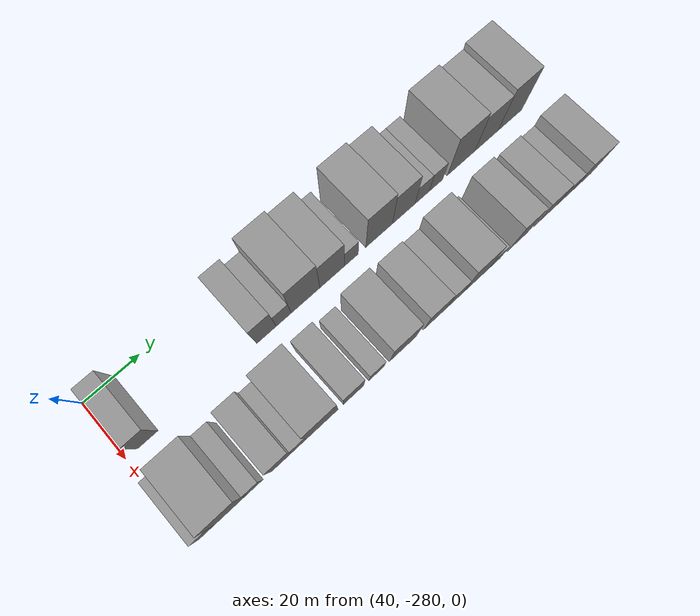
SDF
<sdf version="1.6">
 <world name="default">
  <model name="building_1">
   <static>1</static>
   <pose>50.0000 -272.4769 0 0.000000 0.000000 0.000000</pose>
   <link name="link">
    <pose>0 0 7.50 0 0 0</pose>
    <collision name="collision"><geometry><box><size>20.0000 7.0463 15.0000</size></box></geometry></collision>
    <visual name="visual">
     <cast_shadows>0</cast_shadows>
     <geometry><box><size>20.0000 7.0463 15.0000</size></box></geometry>
     <material>
      <script>
       <uri>model://grey_wall/materials/scripts</uri>
       <uri>model://grey_wall/materials/textures</uri>
       <name>vrc/grey_wall</name>
      </script>
     </material>
    </visual>
   </link>
  </model>
  <model name="building_2">
   <static>1</static>
   <pose>50.0000 -230.0296 0 0.000000 0.000000 0.000000</pose>
   <link name="link">
    <pose>0 0 9.00 0 0 0</pose>
    <collision name="collision"><geometry><box><size>20.0000 7.2828 18.0000</size></box></geometry></collision>
    <visual name="visual">
     <cast_shadows>0</cast_shadows>
     <geometry><box><size>20.0000 7.2828 18.0000</size></box></geometry>
     <material>
      <script>
       <uri>model://grey_wall/materials/scripts</uri>
       <uri>model://grey_wall/materials/textures</uri>
       <name>vrc/grey_wall</name>
      </script>
     </material>
    </visual>
   </link>
  </model>
  <model name="building_3">
   <static>1</static>
   <pose>50.0000 -223.5794 0 0.000000 0.000000 0.000000</pose>
   <link name="link">
    <pose>0 0 6.00 0 0 0</pose>
    <collision name="collision"><geometry><box><size>20.0000 5.6176 12.0000</size></box></geometry></collision>
    <visual name="visual">
     <cast_shadows>0</cast_shadows>
     <geometry><box><size>20.0000 5.6176 12.0000</size></box></geometry>
     <material>
      <script>
       <uri>model://grey_wall/materials/scripts</uri>
       <uri>model://grey_wall/materials/textures</uri>
       <name>vrc/grey_wall</name>
      </script>
     </material>
    </visual>
   </link>
  </model>
  <model name="building_4">
   <static>1</static>
   <pose>50.0000 -215.2634 0 0.000000 0.000000 0.000000</pose>
   <link name="link">
    <pose>0 0 12.00 0 0 0</pose>
    <collision name="collision"><geometry><box><size>20.0000 11.0144 24.0000</size></box></geometry></collision>
    <visual name="visual">
     <cast_shadows>0</cast_shadows>
     <geometry><box><size>20.0000 11.0144 24.0000</size></box></geometry>
     <material>
      <script>
       <uri>model://grey_wall/materials/scripts</uri>
       <uri>model://grey_wall/materials/textures</uri>
       <name>vrc/grey_wall</name>
      </script>
     </material>
    </visual>
   </link>
  </model>
  <model name="building_5">
   <static>1</static>
   <pose>50.0000 -204.9244 0 0.000000 0.000000 0.000000</pose>
   <link name="link">
    <pose>0 0 10.50 0 0 0</pose>
    <collision name="collision"><geometry><box><size>20.0000 9.6638 21.0000</size></box></geometry></collision>
    <visual name="visual">
     <cast_shadows>0</cast_shadows>
     <geometry><box><size>20.0000 9.6638 21.0000</size></box></geometry>
     <material>
      <script>
       <uri>model://grey_wall/materials/scripts</uri>
       <uri>model://grey_wall/materials/textures</uri>
       <name>vrc/grey_wall</name>
      </script>
     </material>
    </visual>
   </link>
  </model>
  <model name="building_6">
   <static>1</static>
   <pose>50.0000 -197.4030 0 0.000000 0.000000 0.000000</pose>
   <link name="link">
    <pose>0 0 6.00 0 0 0</pose>
    <collision name="collision"><geometry><box><size>20.0000 5.3790 12.0000</size></box></geometry></collision>
    <visual name="visual">
     <cast_shadows>0</cast_shadows>
     <geometry><box><size>20.0000 5.3790 12.0000</size></box></geometry>
     <material>
      <script>
       <uri>model://grey_wall/materials/scripts</uri>
       <uri>model://grey_wall/materials/textures</uri>
       <name>vrc/grey_wall</name>
      </script>
     </material>
    </visual>
   </link>
  </model>
  <model name="building_7">
   <static>1</static>
   <pose>50.0000 -186.3632 0 0.000000 0.000000 0.000000</pose>
   <link name="link">
    <pose>0 0 12.00 0 0 0</pose>
    <collision name="collision"><geometry><box><size>20.0000 10.7004 24.0000</size></box></geometry></collision>
    <visual name="visual">
     <cast_shadows>0</cast_shadows>
     <geometry><box><size>20.0000 10.7004 24.0000</size></box></geometry>
     <material>
      <script>
       <uri>model://grey_wall/materials/scripts</uri>
       <uri>model://grey_wall/materials/textures</uri>
       <name>vrc/grey_wall</name>
      </script>
     </material>
    </visual>
   </link>
  </model>
  <model name="building_8">
   <static>1</static>
   <pose>50.0000 -176.3072 0 0.000000 0.000000 0.000000</pose>
   <link name="link">
    <pose>0 0 10.50 0 0 0</pose>
    <collision name="collision"><geometry><box><size>20.0000 9.4116 21.0000</size></box></geometry></collision>
    <visual name="visual">
     <cast_shadows>0</cast_shadows>
     <geometry><box><size>20.0000 9.4116 21.0000</size></box></geometry>
     <material>
      <script>
       <uri>model://grey_wall/materials/scripts</uri>
       <uri>model://grey_wall/materials/textures</uri>
       <name>vrc/grey_wall</name>
      </script>
     </material>
    </visual>
   </link>
  </model>
  <model name="building_9">
   <static>1</static>
   <pose>50.0000 -168.6208 0 0.000000 0.000000 0.000000</pose>
   <link name="link">
    <pose>0 0 6.00 0 0 0</pose>
    <collision name="collision"><geometry><box><size>20.0000 5.9611 12.0000</size></box></geometry></collision>
    <visual name="visual">
     <cast_shadows>0</cast_shadows>
     <geometry><box><size>20.0000 5.9611 12.0000</size></box></geometry>
     <material>
      <script>
       <uri>model://grey_wall/materials/scripts</uri>
       <uri>model://grey_wall/materials/textures</uri>
       <name>vrc/grey_wall</name>
      </script>
     </material>
    </visual>
   </link>
  </model>
  <model name="building_10">
   <static>1</static>
   <pose>50.0000 -162.8003 0 0.000000 0.000000 0.000000</pose>
   <link name="link">
    <pose>0 0 6.00 0 0 0</pose>
    <collision name="collision"><geometry><box><size>20.0000 5.6799 12.0000</size></box></geometry></collision>
    <visual name="visual">
     <cast_shadows>0</cast_shadows>
     <geometry><box><size>20.0000 5.6799 12.0000</size></box></geometry>
     <material>
      <script>
       <uri>model://grey_wall/materials/scripts</uri>
       <uri>model://grey_wall/materials/textures</uri>
       <name>vrc/grey_wall</name>
      </script>
     </material>
    </visual>
   </link>
  </model>
  <model name="building_11">
   <static>1</static>
   <pose>50.0000 -152.1003 0 0.000000 0.000000 0.000000</pose>
   <link name="link">
    <pose>0 0 12.00 0 0 0</pose>
    <collision name="collision"><geometry><box><size>20.0000 11.7200 24.0000</size></box></geometry></collision>
    <visual name="visual">
     <cast_shadows>0</cast_shadows>
     <geometry><box><size>20.0000 11.7200 24.0000</size></box></geometry>
     <material>
      <script>
       <uri>model://grey_wall/materials/scripts</uri>
       <uri>model://grey_wall/materials/textures</uri>
       <name>vrc/grey_wall</name>
      </script>
     </material>
    </visual>
   </link>
  </model>
  <model name="building_12">
   <static>1</static>
   <pose>50.0000 -141.1149 0 0.000000 0.000000 0.000000</pose>
   <link name="link">
    <pose>0 0 10.50 0 0 0</pose>
    <collision name="collision"><geometry><box><size>20.0000 10.2509 21.0000</size></box></geometry></collision>
    <visual name="visual">
     <cast_shadows>0</cast_shadows>
     <geometry><box><size>20.0000 10.2509 21.0000</size></box></geometry>
     <material>
      <script>
       <uri>model://grey_wall/materials/scripts</uri>
       <uri>model://grey_wall/materials/textures</uri>
       <name>vrc/grey_wall</name>
      </script>
     </material>
    </visual>
   </link>
  </model>
  <model name="building_13">
   <static>1</static>
   <pose>50.0000 -130.6137 0 0.000000 0.000000 0.000000</pose>
   <link name="link">
    <pose>0 0 12.00 0 0 0</pose>
    <collision name="collision"><geometry><box><size>20.0000 10.7514 24.0000</size></box></geometry></collision>
    <visual name="visual">
     <cast_shadows>0</cast_shadows>
     <geometry><box><size>20.0000 10.7514 24.0000</size></box></geometry>
     <material>
      <script>
       <uri>model://grey_wall/materials/scripts</uri>
       <uri>model://grey_wall/materials/textures</uri>
       <name>vrc/grey_wall</name>
      </script>
     </material>
    </visual>
   </link>
  </model>
  <model name="building_63">
   <static>1</static>
   <pose>79.0000 -275.2815 0 0.000000 0.000000 0.000000</pose>
   <link name="link">
    <pose>0 0 6.00 0 0 0</pose>
    <collision name="collision"><geometry><box><size>20.0000 5.4369 12.0000</size></box></geometry></collision>
    <visual name="visual">
     <cast_shadows>0</cast_shadows>
     <geometry><box><size>20.0000 5.4369 12.0000</size></box></geometry>
     <material>
      <script>
       <uri>model://grey_wall/materials/scripts</uri>
       <uri>model://grey_wall/materials/textures</uri>
       <name>vrc/grey_wall</name>
      </script>
     </material>
    </visual>
   </link>
  </model>
  <model name="building_64">
   <static>1</static>
   <pose>79.0000 -266.9365 0 0.000000 0.000000 0.000000</pose>
   <link name="link">
    <pose>0 0 12.00 0 0 0</pose>
    <collision name="collision"><geometry><box><size>20.0000 11.2532 24.0000</size></box></geometry></collision>
    <visual name="visual">
     <cast_shadows>0</cast_shadows>
     <geometry><box><size>20.0000 11.2532 24.0000</size></box></geometry>
     <material>
      <script>
       <uri>model://grey_wall/materials/scripts</uri>
       <uri>model://grey_wall/materials/textures</uri>
       <name>vrc/grey_wall</name>
      </script>
     </material>
    </visual>
   </link>
  </model>
  <model name="building_65">
   <static>1</static>
   <pose>79.0000 -258.6698 0 0.000000 0.000000 0.000000</pose>
   <link name="link">
    <pose>0 0 6.00 0 0 0</pose>
    <collision name="collision"><geometry><box><size>20.0000 5.2800 12.0000</size></box></geometry></collision>
    <visual name="visual">
     <cast_shadows>0</cast_shadows>
     <geometry><box><size>20.0000 5.2800 12.0000</size></box></geometry>
     <material>
      <script>
       <uri>model://grey_wall/materials/scripts</uri>
       <uri>model://grey_wall/materials/textures</uri>
       <name>vrc/grey_wall</name>
      </script>
     </material>
    </visual>
   </link>
  </model>
  <model name="building_66">
   <static>1</static>
   <pose>79.0000 -249.2585 0 0.000000 0.000000 0.000000</pose>
   <link name="link">
    <pose>0 0 9.00 0 0 0</pose>
    <collision name="collision"><geometry><box><size>20.0000 7.5426 18.0000</size></box></geometry></collision>
    <visual name="visual">
     <cast_shadows>0</cast_shadows>
     <geometry><box><size>20.0000 7.5426 18.0000</size></box></geometry>
     <material>
      <script>
       <uri>model://grey_wall/materials/scripts</uri>
       <uri>model://grey_wall/materials/textures</uri>
       <name>vrc/grey_wall</name>
      </script>
     </material>
    </visual>
   </link>
  </model>
  <model name="building_67">
   <static>1</static>
   <pose>79.0000 -242.9611 0 0.000000 0.000000 0.000000</pose>
   <link name="link">
    <pose>0 0 6.00 0 0 0</pose>
    <collision name="collision"><geometry><box><size>20.0000 5.0523 12.0000</size></box></geometry></collision>
    <visual name="visual">
     <cast_shadows>0</cast_shadows>
     <geometry><box><size>20.0000 5.0523 12.0000</size></box></geometry>
     <material>
      <script>
       <uri>model://grey_wall/materials/scripts</uri>
       <uri>model://grey_wall/materials/textures</uri>
       <name>vrc/grey_wall</name>
      </script>
     </material>
    </visual>
   </link>
  </model>
  <model name="building_68">
   <static>1</static>
   <pose>79.0000 -234.7143 0 0.000000 0.000000 0.000000</pose>
   <link name="link">
    <pose>0 0 12.00 0 0 0</pose>
    <collision name="collision"><geometry><box><size>20.0000 11.4412 24.0000</size></box></geometry></collision>
    <visual name="visual">
     <cast_shadows>0</cast_shadows>
     <geometry><box><size>20.0000 11.4412 24.0000</size></box></geometry>
     <material>
      <script>
       <uri>model://grey_wall/materials/scripts</uri>
       <uri>model://grey_wall/materials/textures</uri>
       <name>vrc/grey_wall</name>
      </script>
     </material>
    </visual>
   </link>
  </model>
  <model name="building_69">
   <static>1</static>
   <pose>79.0000 -223.2206 0 0.000000 0.000000 0.000000</pose>
   <link name="link">
    <pose>0 0 9.00 0 0 0</pose>
    <collision name="collision"><geometry><box><size>20.0000 7.5463 18.0000</size></box></geometry></collision>
    <visual name="visual">
     <cast_shadows>0</cast_shadows>
     <geometry><box><size>20.0000 7.5463 18.0000</size></box></geometry>
     <material>
      <script>
       <uri>model://grey_wall/materials/scripts</uri>
       <uri>model://grey_wall/materials/textures</uri>
       <name>vrc/grey_wall</name>
      </script>
     </material>
    </visual>
   </link>
  </model>
  <model name="building_70">
   <static>1</static>
   <pose>79.0000 -214.5472 0 0.000000 0.000000 0.000000</pose>
   <link name="link">
    <pose>0 0 6.00 0 0 0</pose>
    <collision name="collision"><geometry><box><size>20.0000 5.8005 12.0000</size></box></geometry></collision>
    <visual name="visual">
     <cast_shadows>0</cast_shadows>
     <geometry><box><size>20.0000 5.8005 12.0000</size></box></geometry>
     <material>
      <script>
       <uri>model://grey_wall/materials/scripts</uri>
       <uri>model://grey_wall/materials/textures</uri>
       <name>vrc/grey_wall</name>
      </script>
     </material>
    </visual>
   </link>
  </model>
  <model name="building_71">
   <static>1</static>
   <pose>79.0000 -204.5023 0 0.000000 0.000000 0.000000</pose>
   <link name="link">
    <pose>0 0 10.50 0 0 0</pose>
    <collision name="collision"><geometry><box><size>20.0000 10.2892 21.0000</size></box></geometry></collision>
    <visual name="visual">
     <cast_shadows>0</cast_shadows>
     <geometry><box><size>20.0000 10.2892 21.0000</size></box></geometry>
     <material>
      <script>
       <uri>model://grey_wall/materials/scripts</uri>
       <uri>model://grey_wall/materials/textures</uri>
       <name>vrc/grey_wall</name>
      </script>
     </material>
    </visual>
   </link>
  </model>
  <model name="building_72">
   <static>1</static>
   <pose>79.0000 -191.8813 0 0.000000 0.000000 0.000000</pose>
   <link name="link">
    <pose>0 0 9.00 0 0 0</pose>
    <collision name="collision"><geometry><box><size>20.0000 8.9528 18.0000</size></box></geometry></collision>
    <visual name="visual">
     <cast_shadows>0</cast_shadows>
     <geometry><box><size>20.0000 8.9528 18.0000</size></box></geometry>
     <material>
      <script>
       <uri>model://grey_wall/materials/scripts</uri>
       <uri>model://grey_wall/materials/textures</uri>
       <name>vrc/grey_wall</name>
      </script>
     </material>
    </visual>
   </link>
  </model>
  <model name="building_73">
   <static>1</static>
   <pose>79.0000 -184.0543 0 0.000000 0.000000 0.000000</pose>
   <link name="link">
    <pose>0 0 7.50 0 0 0</pose>
    <collision name="collision"><geometry><box><size>20.0000 6.7013 15.0000</size></box></geometry></collision>
    <visual name="visual">
     <cast_shadows>0</cast_shadows>
     <geometry><box><size>20.0000 6.7013 15.0000</size></box></geometry>
     <material>
      <script>
       <uri>model://grey_wall/materials/scripts</uri>
       <uri>model://grey_wall/materials/textures</uri>
       <name>vrc/grey_wall</name>
      </script>
     </material>
    </visual>
   </link>
  </model>
  <model name="building_74">
   <static>1</static>
   <pose>79.0000 -175.5456 0 0.000000 0.000000 0.000000</pose>
   <link name="link">
    <pose>0 0 12.00 0 0 0</pose>
    <collision name="collision"><geometry><box><size>20.0000 10.3162 24.0000</size></box></geometry></collision>
    <visual name="visual">
     <cast_shadows>0</cast_shadows>
     <geometry><box><size>20.0000 10.3162 24.0000</size></box></geometry>
     <material>
      <script>
       <uri>model://grey_wall/materials/scripts</uri>
       <uri>model://grey_wall/materials/textures</uri>
       <name>vrc/grey_wall</name>
      </script>
     </material>
    </visual>
   </link>
  </model>
  <model name="building_75">
   <static>1</static>
   <pose>79.0000 -167.6555 0 0.000000 0.000000 0.000000</pose>
   <link name="link">
    <pose>0 0 6.00 0 0 0</pose>
    <collision name="collision"><geometry><box><size>20.0000 5.4639 12.0000</size></box></geometry></collision>
    <visual name="visual">
     <cast_shadows>0</cast_shadows>
     <geometry><box><size>20.0000 5.4639 12.0000</size></box></geometry>
     <material>
      <script>
       <uri>model://grey_wall/materials/scripts</uri>
       <uri>model://grey_wall/materials/textures</uri>
       <name>vrc/grey_wall</name>
      </script>
     </material>
    </visual>
   </link>
  </model>
  <model name="building_76">
   <static>1</static>
   <pose>79.0000 -157.6912 0 0.000000 0.000000 0.000000</pose>
   <link name="link">
    <pose>0 0 10.50 0 0 0</pose>
    <collision name="collision"><geometry><box><size>20.0000 8.4647 21.0000</size></box></geometry></collision>
    <visual name="visual">
     <cast_shadows>0</cast_shadows>
     <geometry><box><size>20.0000 8.4647 21.0000</size></box></geometry>
     <material>
      <script>
       <uri>model://grey_wall/materials/scripts</uri>
       <uri>model://grey_wall/materials/textures</uri>
       <name>vrc/grey_wall</name>
      </script>
     </material>
    </visual>
   </link>
  </model>
  <model name="building_77">
   <static>1</static>
   <pose>79.0000 -146.1789 0 0.000000 0.000000 0.000000</pose>
   <link name="link">
    <pose>0 0 9.00 0 0 0</pose>
    <collision name="collision"><geometry><box><size>20.0000 8.5598 18.0000</size></box></geometry></collision>
    <visual name="visual">
     <cast_shadows>0</cast_shadows>
     <geometry><box><size>20.0000 8.5598 18.0000</size></box></geometry>
     <material>
      <script>
       <uri>model://grey_wall/materials/scripts</uri>
       <uri>model://grey_wall/materials/textures</uri>
       <name>vrc/grey_wall</name>
      </script>
     </material>
    </visual>
   </link>
  </model>
  <model name="building_78">
   <static>1</static>
   <pose>79.0000 -138.5006 0 0.000000 0.000000 0.000000</pose>
   <link name="link">
    <pose>0 0 7.50 0 0 0</pose>
    <collision name="collision"><geometry><box><size>20.0000 6.7967 15.0000</size></box></geometry></collision>
    <visual name="visual">
     <cast_shadows>0</cast_shadows>
     <geometry><box><size>20.0000 6.7967 15.0000</size></box></geometry>
     <material>
      <script>
       <uri>model://grey_wall/materials/scripts</uri>
       <uri>model://grey_wall/materials/textures</uri>
       <name>vrc/grey_wall</name>
      </script>
     </material>
    </visual>
   </link>
  </model>
  <model name="building_79">
   <static>1</static>
   <pose>79.0000 -130.1603 0 0.000000 0.000000 0.000000</pose>
   <link name="link">
    <pose>0 0 10.50 0 0 0</pose>
    <collision name="collision"><geometry><box><size>20.0000 9.8841 21.0000</size></box></geometry></collision>
    <visual name="visual">
     <cast_shadows>0</cast_shadows>
     <geometry><box><size>20.0000 9.8841 21.0000</size></box></geometry>
     <material>
      <script>
       <uri>model://grey_wall/materials/scripts</uri>
       <uri>model://grey_wall/materials/textures</uri>
       <name>vrc/grey_wall</name>
      </script>
     </material>
    </visual>
   </link>
  </model>
 </world>
</sdf>
